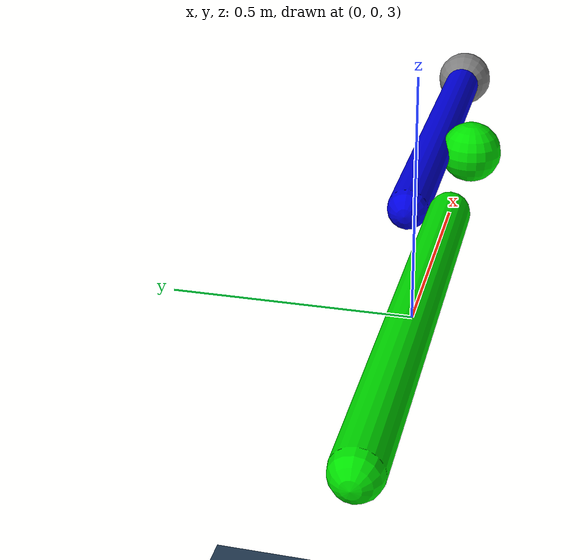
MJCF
<mujoco>
    <option gravity="0 0 -9.81" />
    <asset>
        <material name="green" rgba="0 0.9 0 1" />
        <material name="blue" rgba="0 0 0.9 1" />
        <texture name="grid" type="2d" builtin="checker" width="512" height="512" rgb1=".1 .2 .3" rgb2=".2 .3 .4" />
        <material name="grid" texture="grid" texrepeat="1 1" texuniform="true" reflectance=".2" />
    </asset>

    <worldbody>
        <light diffuse="0.3 0.3 0.3" pos="1 0 3" dir="-1 0 -3" />
        <geom type="plane" size="10 10 0.1"  material="grid" />

        <body name="link1" pos="0 0 3" euler="0 90 0">
            <joint name="joint1" type="hinge" axis="0 -1 0" pos="0 0 -0.5" />
            <geom type="capsule" size="0.05 0.5" mass="1" material="green" />

            <body name="link2" pos="0 0.1 1" euler="0 0 0">
                <joint name="joint2" type="hinge" axis="0 -1 0" pos="0 0 -0.5"  />
                <geom type="capsule" size="0.05 0.5" mass="1" material="blue" />
                <site name="ee" pos="0 0 0.5" size="0.08" />
            </body>
        </body>
        <site name="ee1" pos="0.8934134186943307 0.0 3.0" size="0.08" material="green"/>
    </worldbody>

    <actuator>
        <motor name="trq_ctrl1" joint="joint1" ctrllimited="true" ctrlrange="-100 100" />
        <motor name="trq_ctrl2" joint="joint2" ctrllimited="true" ctrlrange="-100 100" />
    </actuator>

    <sensor>
		<framepos objtype="site" objname="ee" />
		<framelinvel objtype="site" objname="ee" />
	</sensor>

</mujoco>
